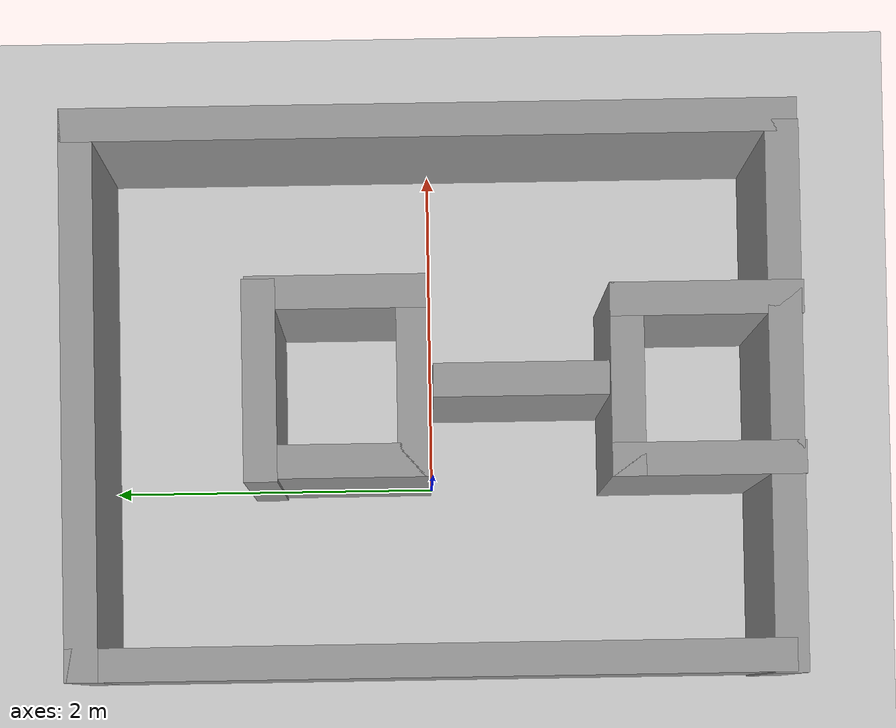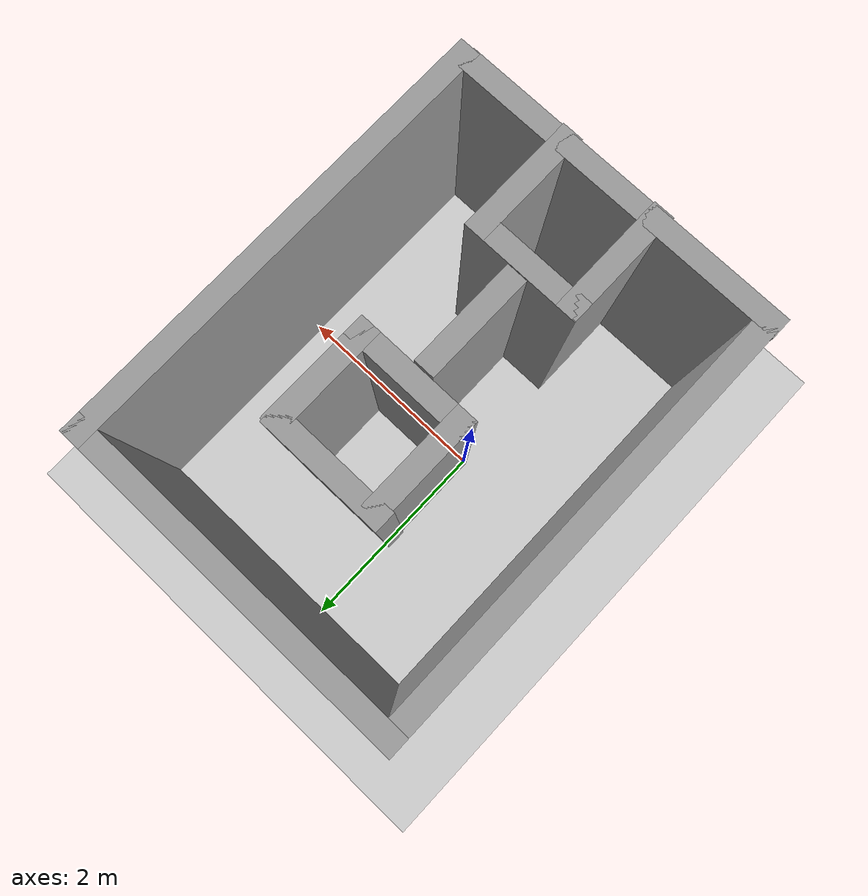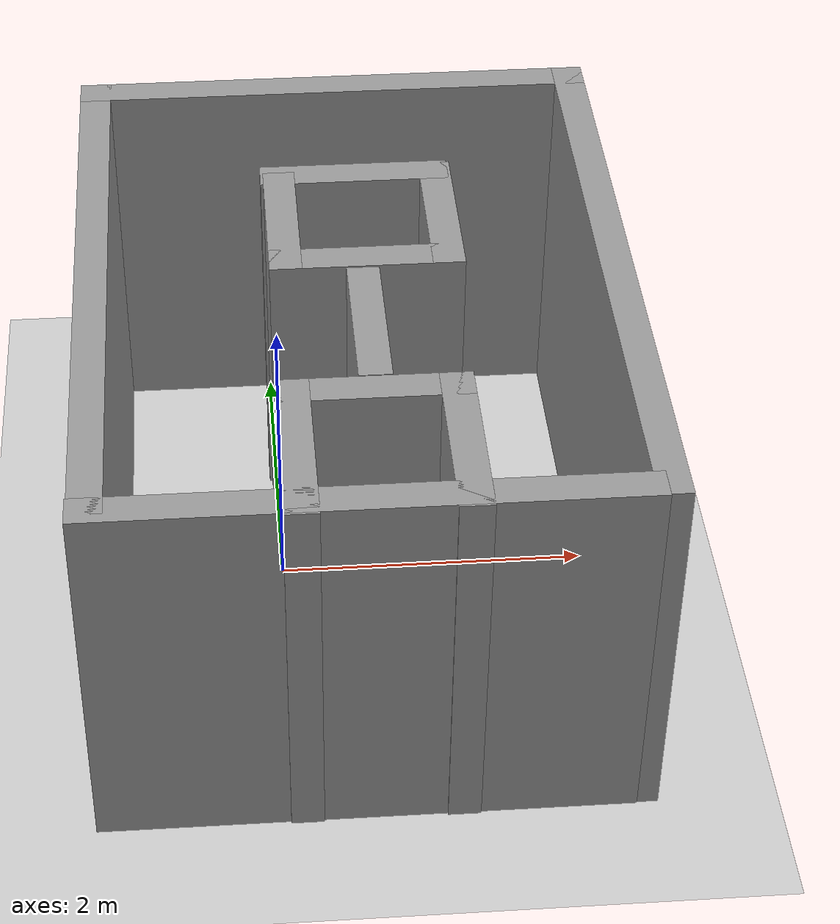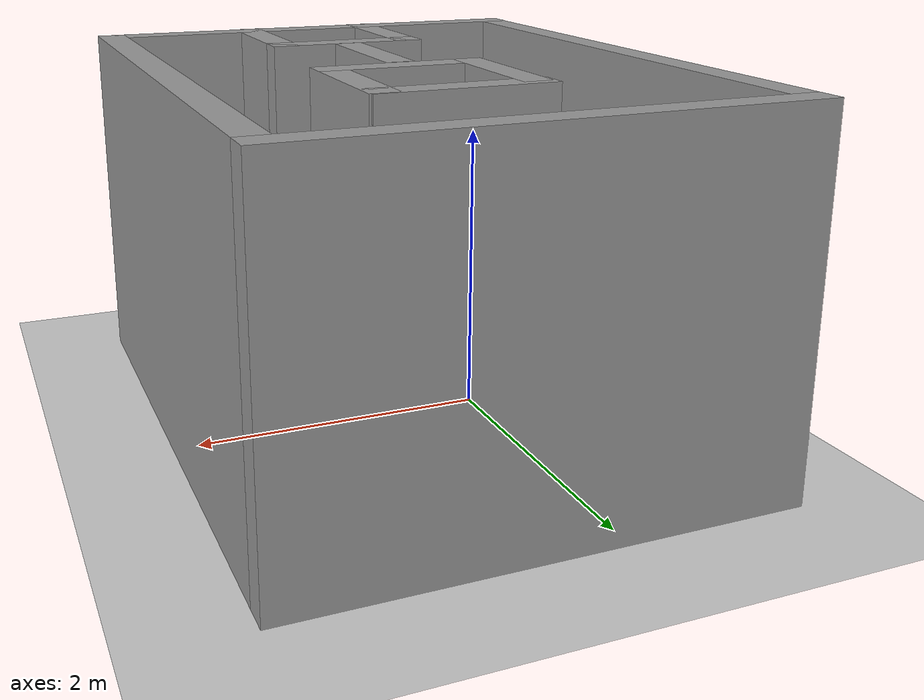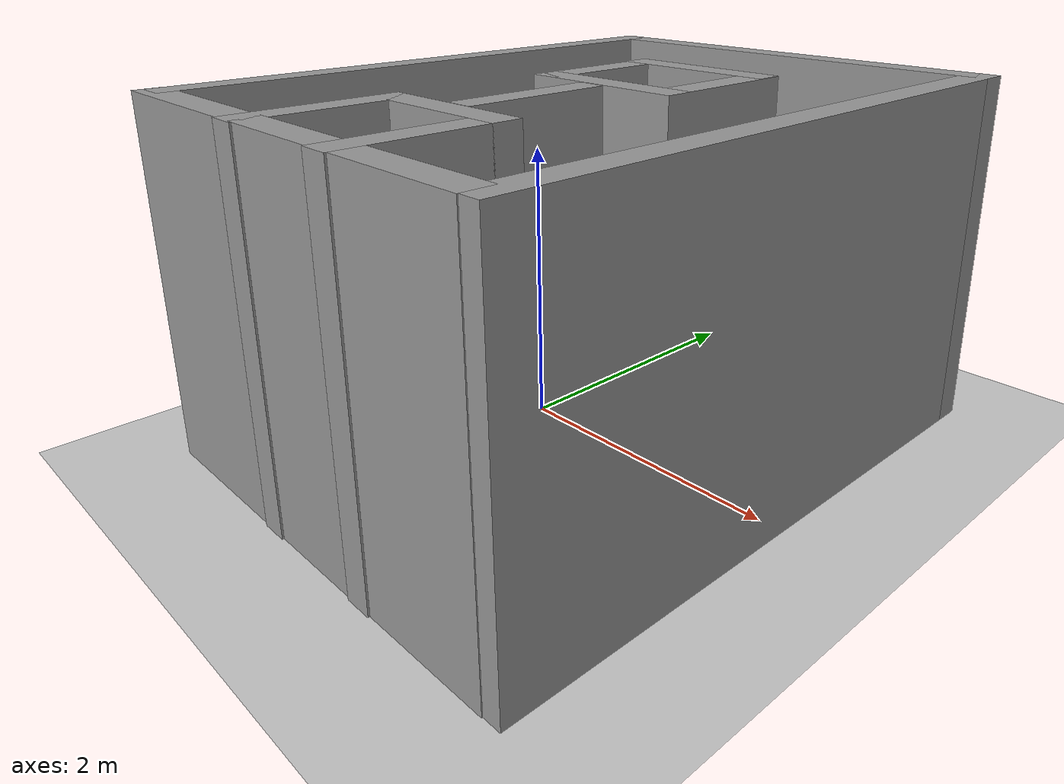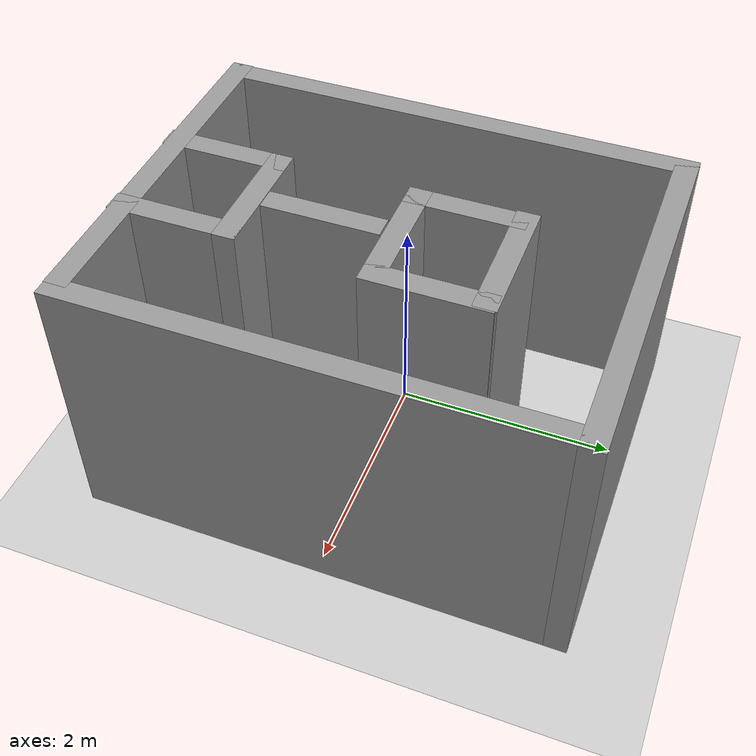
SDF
<sdf version="1.4">
 <world name="default">
  <include><uri>model://sun</uri></include>
  <include><uri>model://ground_plane</uri></include>
  <model name="real_world_map">
   <link name="Wall_1">
    <collision name="Wall_1_Collision">
     <geometry><box><size>3.26 0.2 2.5</size></box></geometry>
     <pose>0 0 1.25 0 -0 0</pose>
    </collision>
    <visual name="Wall_1_Visual">
     <pose>0 0 1.25 0 -0 0</pose>
     <geometry><box><size>3.26 0.2 2.5</size></box></geometry>
     <material>
      <script><uri>file://media/materials/scripts/gazebo.material</uri><name>Gazebo/Grey</name></script>
     </material>
    </visual>
    <velocity_decay><linear>0</linear><angular>0</angular></velocity_decay>
    <pose>0.412843 -2.08389 0 0 -0 0</pose>
   </link>
   <link name="Wall_10">
    <collision name="Wall_10_Collision">
     <geometry><box><size>1.14446 0.2 2.5</size></box></geometry>
     <pose>0 0 1.25 0 -0 0</pose>
    </collision>
    <visual name="Wall_10_Visual">
     <pose>0 0 1.25 0 -0 0</pose>
     <geometry><box><size>1.14446 0.2 2.5</size></box></geometry>
     <material>
      <script><uri>file://media/materials/scripts/gazebo.material</uri><name>Gazebo/Grey</name></script>
     </material>
    </visual>
    <velocity_decay><linear>0</linear><angular>0</angular></velocity_decay>
    <pose>0.049596 -1.62455 0 0 0 -1.5708</pose>
   </link>
   <link name="Wall_12">
    <collision name="Wall_12_Collision">
     <geometry><box><size>1.03952 0.2 2.5</size></box></geometry>
     <pose>0 0 1.25 0 -0 0</pose>
    </collision>
    <visual name="Wall_12_Visual">
     <pose>0 0 1.25 0 -0 0</pose>
     <geometry><box><size>1.03952 0.2 2.5</size></box></geometry>
     <material>
      <script><uri>file://media/materials/scripts/gazebo.material</uri><name>Gazebo/Grey</name></script>
     </material>
    </visual>
    <velocity_decay><linear>0</linear><angular>0</angular></velocity_decay>
    <pose>0.067086 0.526732 0 0 0 -1.5708</pose>
   </link>
   <link name="Wall_13">
    <collision name="Wall_13_Collision">
     <geometry><box><size>1.19693 0.2 2.5</size></box></geometry>
     <pose>0 0 1.25 0 -0 0</pose>
    </collision>
    <visual name="Wall_13_Visual">
     <pose>0 0 1.25 0 -0 0</pose>
     <geometry><box><size>1.19693 0.2 2.5</size></box></geometry>
     <material>
      <script><uri>file://media/materials/scripts/gazebo.material</uri><name>Gazebo/Grey</name></script>
     </material>
    </visual>
    <velocity_decay><linear>0</linear><angular>0</angular></velocity_decay>
    <pose>0.565553 0.10697 0 0 -0 0</pose>
   </link>
   <link name="Wall_14">
    <collision name="Wall_14_Collision">
     <geometry><box><size>1.09199 0.2 2.5</size></box></geometry>
     <pose>0 0 1.25 0 -0 0</pose>
    </collision>
    <visual name="Wall_14_Visual">
     <pose>0 0 1.25 0 -0 0</pose>
     <geometry><box><size>1.09199 0.2 2.5</size></box></geometry>
     <material>
      <script><uri>file://media/materials/scripts/gazebo.material</uri><name>Gazebo/Grey</name></script>
     </material>
    </visual>
    <velocity_decay><linear>0</linear><angular>0</angular></velocity_decay>
    <pose>1.06402 0.552967 0 0 -0 1.5708</pose>
   </link>
   <link name="Wall_16">
    <collision name="Wall_16_Collision">
     <geometry><box><size>1.19693 0.2 2.5</size></box></geometry>
     <pose>0 0 1.25 0 -0 0</pose>
    </collision>
    <visual name="Wall_16_Visual">
     <pose>0 0 1.25 0 -0 0</pose>
     <geometry><box><size>1.19693 0.2 2.5</size></box></geometry>
     <material>
      <script><uri>file://media/materials/scripts/gazebo.material</uri><name>Gazebo/Grey</name></script>
     </material>
    </visual>
    <velocity_decay><linear>0</linear><angular>0</angular></velocity_decay>
    <pose>0.548063 1.01645 0 0 -0 0</pose>
   </link>
   <link name="Wall_3">
    <collision name="Wall_3_Collision">
     <geometry><box><size>4.36027 0.2 2.5</size></box></geometry>
     <pose>0 0 1.25 0 -0 0</pose>
    </collision>
    <visual name="Wall_3_Visual">
     <pose>0 0 1.25 0 -0 0</pose>
     <geometry><box><size>4.36027 0.2 2.5</size></box></geometry>
     <material>
      <script><uri>file://media/materials/scripts/gazebo.material</uri><name>Gazebo/Grey</name></script>
     </material>
    </visual>
    <velocity_decay><linear>0</linear><angular>0</angular></velocity_decay>
    <pose>2.07226 0.002969 0 0 -0 1.5708</pose>
   </link>
   <link name="Wall_4">
    <collision name="Wall_4_Collision">
     <geometry><box><size>3.38138 0.2 2.5</size></box></geometry>
     <pose>0 0 1.25 0 -0 0</pose>
    </collision>
    <visual name="Wall_4_Visual">
     <pose>0 0 1.25 0 -0 0</pose>
     <geometry><box><size>3.38138 0.2 2.5</size></box></geometry>
     <material>
      <script><uri>file://media/materials/scripts/gazebo.material</uri><name>Gazebo/Grey</name></script>
     </material>
    </visual>
    <velocity_decay><linear>0</linear><angular>0</angular></velocity_decay>
    <pose>0.481564 2.08311 0 0 -0 3.14159</pose>
   </link>
   <link name="Wall_5">
    <collision name="Wall_5_Collision">
     <geometry><box><size>4.29909 0.2 2.5</size></box></geometry>
     <pose>0 0 1.25 0 -0 0</pose>
    </collision>
    <visual name="Wall_5_Visual">
     <pose>0 0 1.25 0 -0 0</pose>
     <geometry><box><size>4.29909 0.2 2.5</size></box></geometry>
     <material>
      <script><uri>file://media/materials/scripts/gazebo.material</uri><name>Gazebo/Grey</name></script>
     </material>
    </visual>
    <velocity_decay><linear>0</linear><angular>0</angular></velocity_decay>
    <pose>-1.10913 0.033559 0 0 0 -1.5708</pose>
   </link>
   <link name="Wall_8">
    <collision name="Wall_8_Collision">
     <geometry><box><size>1.14446 0.2 2.5</size></box></geometry>
     <pose>0 0 1.25 0 -0 0</pose>
    </collision>
    <visual name="Wall_8_Visual">
     <pose>0 0 1.25 0 -0 0</pose>
     <geometry><box><size>1.14446 0.2 2.5</size></box></geometry>
     <material>
      <script><uri>file://media/materials/scripts/gazebo.material</uri><name>Gazebo/Grey</name></script>
     </material>
    </visual>
    <velocity_decay><linear>0</linear><angular>0</angular></velocity_decay>
    <pose>0.994059 -1.62455 0 0 -0 1.5708</pose>
   </link>
   <link name="Wall_99">
    <collision name="Wall_99_Collision">
     <geometry><box><size>1.03952 0.2 2.5</size></box></geometry>
     <pose>0 0 1.25 0 -0 0</pose>
    </collision>
    <visual name="Wall_99_Visual">
     <pose>0 0 1.25 0 -0 0</pose>
     <geometry><box><size>1.03952 0.2 2.5</size></box></geometry>
     <material>
      <script><uri>file://media/materials/scripts/gazebo.material</uri><name>Gazebo/Grey</name></script>
     </material>
    </visual>
    <velocity_decay><linear>0</linear><angular>0</angular></velocity_decay>
    <pose>0.533543 -0.526732 0 0 0 -1.5708</pose>
   </link>
   <link name="Wall_9">
    <collision name="Wall_9_Collision">
     <geometry><box><size>1.14446 0.2 2.5</size></box></geometry>
     <pose>0 0 1.25 0 -0 0</pose>
    </collision>
    <visual name="Wall_9_Visual">
     <pose>0 0 1.25 0 -0 0</pose>
     <geometry><box><size>1.14446 0.2 2.5</size></box></geometry>
     <material>
      <script><uri>file://media/materials/scripts/gazebo.material</uri><name>Gazebo/Grey</name></script>
     </material>
    </visual>
    <velocity_decay><linear>0</linear><angular>0</angular></velocity_decay>
    <pose>0.521828 -1.15231 0 0 -0 3.14159</pose>
   </link>
   <static>1</static>
  </model>
 </world>
</sdf>
